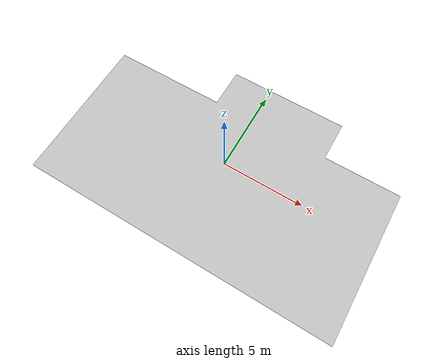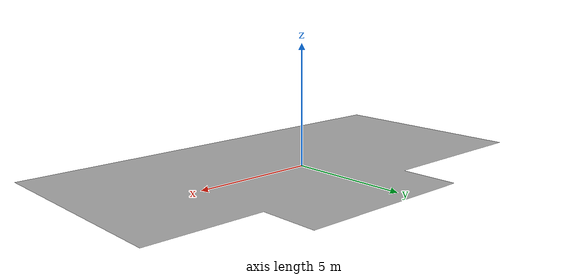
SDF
<?xml version="1.0"?>
<sdf version="1.6">
  <model name="aws_robomaker_residential_FloorB_01">
    <link name="link_FloorB_01">
      <inertial>
        <mass>100</mass>
        <inertia>
          <ixx>0.01</ixx>
          <iyy>0.01</iyy>
          <izz>0.01</izz>
          <ixy>0.0</ixy>
          <ixz>0.0</ixz>
          <iyz>0.0</iyz>
        </inertia>
      </inertial>
      <collision name="collision">
        <geometry>
          <mesh>
            <uri>model://aws_robomaker_residential_FloorB_01/meshes/aws_FloorB_01_collision.DAE</uri>
            <scale>1 1 0.9</scale>
          </mesh>
        </geometry>
        <surface>
          <friction>
            <ode>
              <mu>100</mu>
              <mu2>50</mu2>
            </ode>
          </friction>
        </surface>
      </collision>
      <visual name="visual">
        <geometry>
          <mesh>
            <uri>model://aws_robomaker_residential_FloorB_01/meshes/aws_FloorB_01_visual.DAE</uri>
          </mesh>
        </geometry>
        <meta>
          <layer> 1 </layer>
        </meta>
      </visual>
    </link>
    <static>1</static>
  </model>
</sdf>
